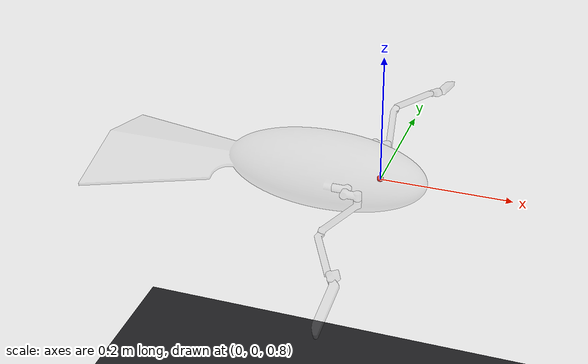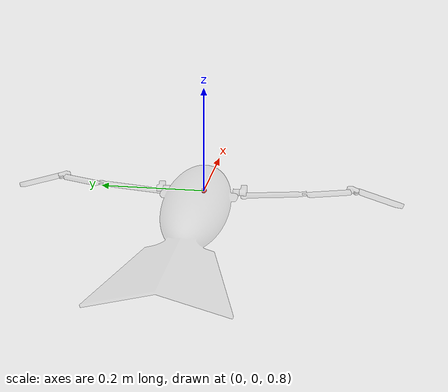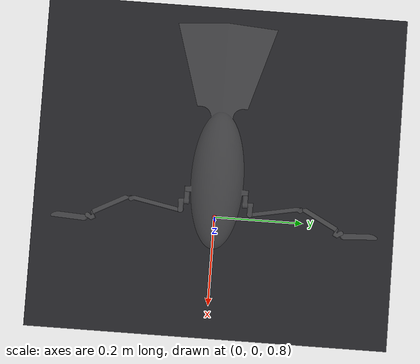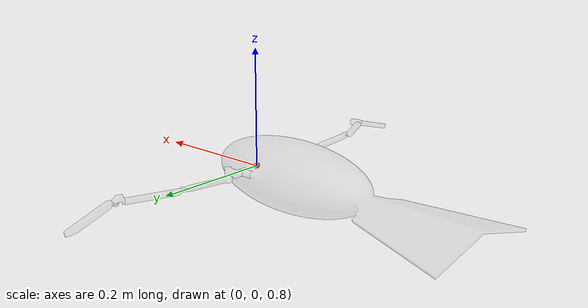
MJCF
<mujoco model="bird">
  <include file="bird.xml"/>

  <visual>
    <headlight diffuse="0.6 0.6 0.6" ambient="0.1 0.1 0.1" specular="0 0 0"/>
    <rgba haze="0.3 0.3 0.3 1"/>
    <global orthographic="false" fovy="5.0"/>
    <scale selectpoint="0.05"/>
    <map shadowclip="4.0"/> <quality shadowsize="8192"/>
  </visual>

  <asset>
    <texture type="skybox" builtin="gradient" rgb1="0.5 0.5 0.5" rgb2="0 0 0" width="512" height="3072"/>
    <texture type="2d" name="groundplane" builtin="checker" mark="edge" rgb1="0.15 0.15 0.17" rgb2="0.1 0.1 0.1"
      markrgb="0.3 0.3 0.3" width="100" height="100"/>
    <material name="groundplane" texture="groundplane" texuniform="true" texrepeat="2 2" reflectance="0"/>
  </asset>

  <worldbody>
    <light pos="0 0 10" dir="0 0 -1" directional="true"/>
    <geom name="floor" size="0 0 0.05" type="plane" material="groundplane" contype="1" conaffinity="0"/>
  </worldbody>
</mujoco>

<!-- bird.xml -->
<mujoco model="xml">
  <compiler angle="radian" meshdir="meshes/" boundmass="1e-06" boundinertia="1e-14"/>

  <default>
    <geom contype="0" conaffinity="0"/>
  </default>

  <asset>
    <mesh name="body"   content_type="model/stl" file="body.stl"   scale="0.001 0.001 0.001"/>
    <mesh name="RWing1" content_type="model/stl" file="RWing1.stl" scale="0.001 0.001 0.001"/>
    <mesh name="RWing2" content_type="model/stl" file="RWing2.stl" scale="0.001 0.001 0.001"/>
    <mesh name="RWing3" content_type="model/stl" file="RWing3.stl" scale="0.001 0.001 0.001"/>
    <mesh name="RWing4" content_type="model/stl" file="RWing4.stl" scale="0.001 0.001 0.001"/>
    <mesh name="RWing5" content_type="model/stl" file="RWing5.stl" scale="0.001 0.001 0.001"/>
    <mesh name="RWing6" content_type="model/stl" file="RWing6.stl" scale="0.001 0.001 0.001"/>
    <mesh name="LWing1" content_type="model/stl" file="LWing1.stl" scale="0.001 0.001 0.001"/>
    <mesh name="LWing2" content_type="model/stl" file="LWing2.stl" scale="0.001 0.001 0.001"/>
    <mesh name="LWing3" content_type="model/stl" file="LWing3.stl" scale="0.001 0.001 0.001"/>
    <mesh name="LWing4" content_type="model/stl" file="LWing4.stl" scale="0.001 0.001 0.001"/>
    <mesh name="LWing5" content_type="model/stl" file="LWing5.stl" scale="0.001 0.001 0.001"/>
    <mesh name="LWing6" content_type="model/stl" file="LWing6.stl" scale="0.001 0.001 0.001"/>
  </asset>

  <worldbody>
    <body name="body" pos="0 0 0.801">

      <inertial pos="-0.102343477438 5.05789053343e-08 -0.000785347936" mass="0.946680" fullinertia="0.00146143 0.00954167 0.00970986 0 -0.000201759 0"/>
      <site name="imu" pos="0 0 0" quat="1 0 0 0" size="0.005" rgba="1 0 0 1"/>
      <geom type="mesh" contype="0" conaffinity="0" group="1" density="0" rgba="0.7 0.7 0.7 0.2" mesh="body"/>
      <geom name="body_collision" type="mesh" contype="0" conaffinity="1" rgba="0.7 0.7 0.7 0.2" mesh="body"/>

      <body name="RWing1" pos="-0.054 -0.066 0.012">
        <inertial pos="0.0140954 0 0" mass="0.0142420" diaginertia="2.09460e-06 2.09460e-06 2.09460e-06"/>
        <joint name="J1" pos="0 0 0" axis="1 0 0"/>
        <geom pos="0.054 0.066 -0.012" quat="1 0 0 0" type="mesh" rgba="0.7 0.7 0.7 0.2" mesh="RWing1"/>

        <body name="RWing2" pos="0.022 -0.006 0">
          <inertial pos="0.01 -0.006 0" mass="0.0236670" diaginertia="4.88338e-06 4.88338e-06 4.88338e-06"/>
          <joint name="J2" pos="0 0 0" axis="0 -1 0"/>
          <geom pos="0.032 0.072 -0.012" quat="1 0 0 0" type="mesh" rgba="0.7 0.7 0.7 0.2" mesh="RWing2"/>

          <body name="RWing3" pos="0.02 -0.006 -0.006">
            <inertial pos="-0.00832606 -0.0495296 0.000252962" quat="0.352206 0.184514 -0.613148 0.682609" mass="0.0236670" diaginertia="4.28992e-04 4.02883e-04 2.61125e-05"/>
            <joint name="J3" pos="0 0 0" axis="0 0 1"/>
            <geom pos="0.012 0.078 -0.006" quat="1 0 0 0" type="mesh" rgba="0.7 0.7 0.7 0.2" mesh="RWing3"/>

            <body name="RWing4" pos="-0.017385 -0.112374 0.010924">
              <inertial pos="0.0159714 -0.0443005 -0.00446237" quat="0.680193 0.680193 0.193229 0.193229" mass="0.0355005" diaginertia="5.93099e-04 5.63362e-04 2.97498e-05"/>
              <joint name="J4" pos="0 0 0" axis="0.272948 0.181163 0.944817"/>
              <geom pos="0.029385 0.190374 -0.016924" quat="1 0 0 0" type="mesh" rgba="0.7 0.7 0.7 0.2" mesh="RWing4"/>

              <body name="RWing5" pos="0.038473 -0.083152 -0.006535">
                <inertial pos="0.00762387 -0.00474471 0.000283107" mass="0.00591675" diaginertia="4.84493e-07 4.84493e-07 4.84493e-07"/>
                <joint name="J5" pos="0 0 0" axis="0.46039 -0.885988 -0.055365"/>
                <geom pos="-0.009088 0.273526 -0.010389" quat="1 0 0 0" type="mesh" rgba="0.7 0.7 0.7 0.2" mesh="RWing5"/>

                <body name="RWing6" pos="0.00608 -0.012127 0.000242">
                  <inertial pos="0.00535555 -0.0427722 -0.0148432" quat="0.438819 0.554471 -0.554471 0.438819" mass="0.0236670" diaginertia="1.49533e-05 1.42791e-05 2.18166e-06"/>
                  <joint name="J6" pos="0 0 0" axis="-0.259868 -0.096705 0.96079"/>
                  <geom pos="-0.015168 0.285653 -0.010631" quat="1 0 0 0" type="mesh" rgba="0.7 0.7 0.7 0.2" mesh="RWing6"/>
                </body>
              </body>
            </body>
          </body>
        </body>
      </body>

      <body name="LWing1" pos="-0.054 0.066 0.012">
        <inertial pos="0.0140954 0 0" mass="0.0142420" diaginertia="2.09460e-06 2.09460e-06 2.09460e-06"/>
        <joint name="J7" pos="0 0 0" axis="-1 0 0"/>
        <geom pos="0.054 -0.066 -0.012" quat="1 0 0 0" type="mesh" rgba="0.7 0.7 0.7 0.2" mesh="LWing1"/>

        <body name="LWing2" pos="0.022 0.006 0">
          <inertial pos="0.01 0.006 0" mass="0.0236670" diaginertia="4.88338e-06 4.88338e-06 4.88338e-06"/>
          <joint name="J8" pos="0 0 0" axis="0 -1 0"/>
          <geom pos="0.032 -0.072 -0.012" quat="1 0 0 0" type="mesh" rgba="0.7 0.7 0.7 0.2" mesh="LWing2"/>

          <body name="LWing3" pos="0.02 0.006 -0.006">
            <inertial pos="-0.00832606 0.0495296 0.000252962" quat="0.184514 0.352206 -0.682609 0.613148" mass="0.0236670" diaginertia="4.28992e-04 4.02883e-04 2.61125e-05"/>
            <joint name="J9" pos="0 0 0" axis="0 0 -1"/>
            <geom pos="0.012 -0.078 -0.006" quat="1 0 0 0" type="mesh" rgba="0.7 0.7 0.7 0.2" mesh="LWing3"/>

            <body name="LWing4" pos="-0.017385 0.112374 0.010924">
              <inertial pos="0.0159714 0.0443005 -0.00446237" quat="0.680193 0.680193 -0.193229 -0.193229" mass="0.0355005" diaginertia="5.93099e-04 5.63362e-04 2.97498e-05"/>
              <joint name="J10" pos="0 0 0" axis="-0.272948 0.181163 -0.944817"/>
              <geom pos="0.029385 -0.190374 -0.016924" quat="1 0 0 0" type="mesh" rgba="0.7 0.7 0.7 0.2" mesh="LWing4"/>

              <body name="LWing5" pos="0.038473 0.083152 -0.006535">
                <inertial pos="0.00762387 0.00474471 0.000283107" mass="0.00591675" diaginertia="4.84493e-07 4.84493e-07 4.84493e-07"/>
                <joint name="J11" pos="0 0 0" axis="-0.46039 -0.885988 0.055365"/>
                <geom pos="-0.009088 -0.273526 -0.010389" quat="1 0 0 0" type="mesh" rgba="0.7 0.7 0.7 0.2" mesh="LWing5"/>

                <body name="LWing6" pos="0.00608 0.012127 0.000242">
                  <inertial pos="0.00535555 0.0427722 -0.0148432" quat="0.554471 0.438819 -0.438819 0.554471" mass="0.0236670" diaginertia="1.49533e-05 1.42791e-05 2.18166e-06"/>
                  <joint name="J12" pos="0 0 0" axis="0.259868 -0.096705 -0.96079"/>
                  <geom pos="-0.015168 -0.285653 -0.010631" quat="1 0 0 0" type="mesh" rgba="0.7 0.7 0.7 0.2" mesh="LWing6"/>
                </body>
              </body>
            </body>
          </body>
        </body>
      </body>
    </body>
  </worldbody>

  <actuator>
    <motor name="motor_J1"  joint="J1"  gear="1" ctrllimited="false"/>
    <motor name="motor_J2"  joint="J2"  gear="1" ctrllimited="false"/>
    <motor name="motor_J3"  joint="J3"  gear="1" ctrllimited="false"/>
    <motor name="motor_J4"  joint="J4"  gear="1" ctrllimited="false"/>
    <motor name="motor_J5"  joint="J5"  gear="1" ctrllimited="false"/>
    <motor name="motor_J6"  joint="J6"  gear="1" ctrllimited="false"/>
    <motor name="motor_J7"  joint="J7"  gear="1" ctrllimited="false"/>
    <motor name="motor_J8"  joint="J8"  gear="1" ctrllimited="false"/>
    <motor name="motor_J9"  joint="J9"  gear="1" ctrllimited="false"/>
    <motor name="motor_J10" joint="J10" gear="1" ctrllimited="false"/>
    <motor name="motor_J11" joint="J11" gear="1" ctrllimited="false"/>
    <motor name="motor_J12" joint="J12" gear="1" ctrllimited="false"/>
  </actuator>

  <sensor>
    <framepos name="imu_pos" objtype="site" objname="imu"/>
    <framelinvel name="imu_vel" objtype="site" objname="imu"/>
    <framelinacc name="imu_acc" objtype="site" objname="imu"/>
    <framequat name="imu_quat" objtype="site" objname="imu"/>
    <gyro name="imu_gyro" site="imu"/>
    <frameangacc name="imu_angacc" objtype="site" objname="imu"/>
  </sensor>
</mujoco>
